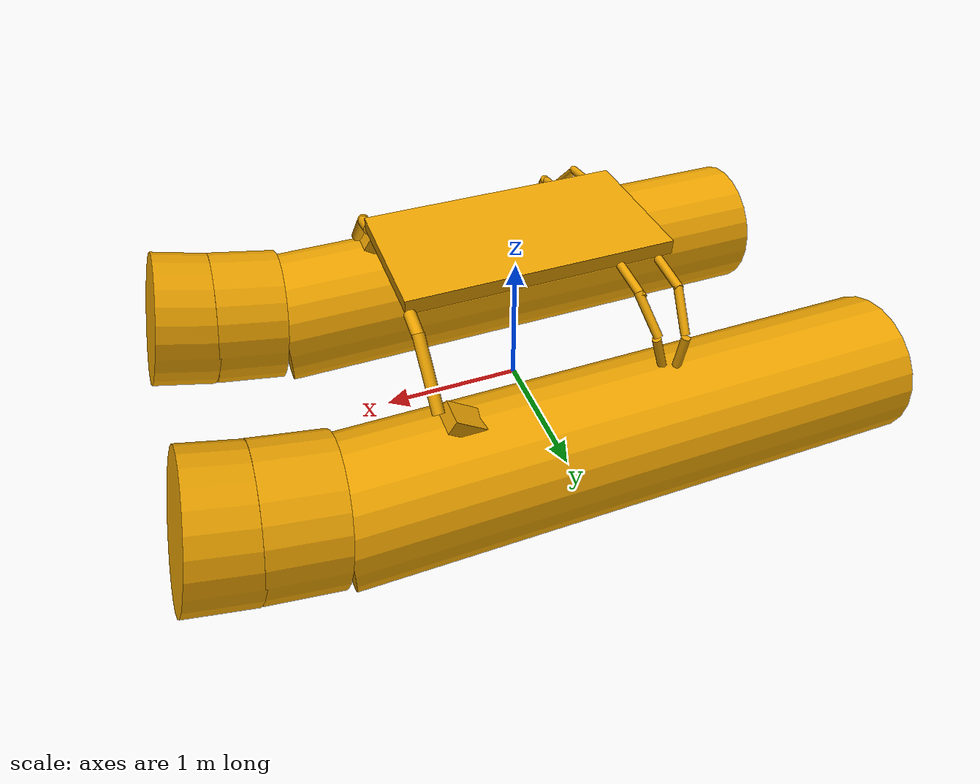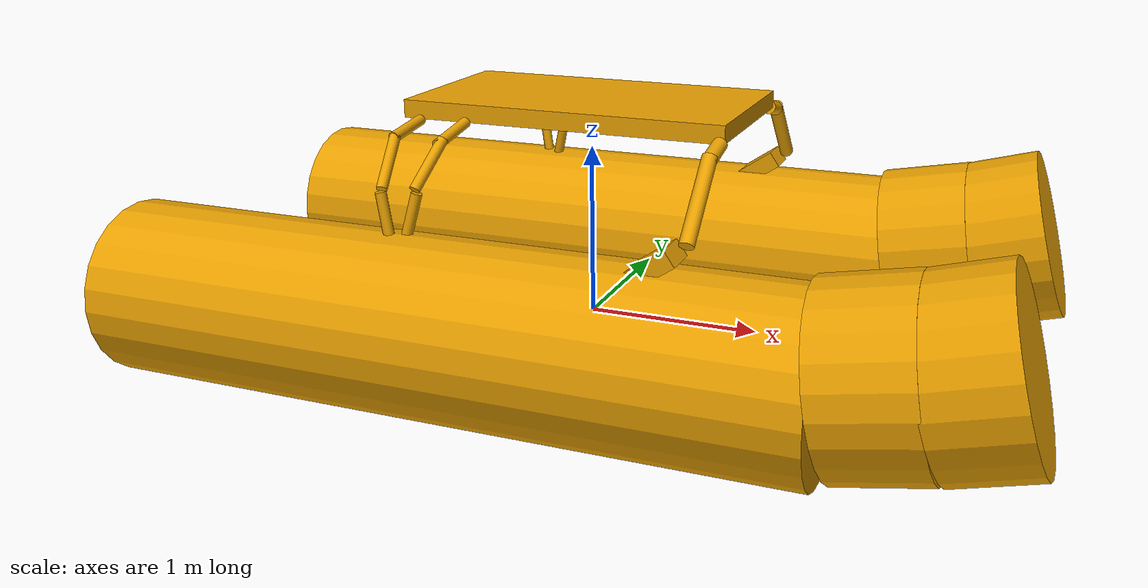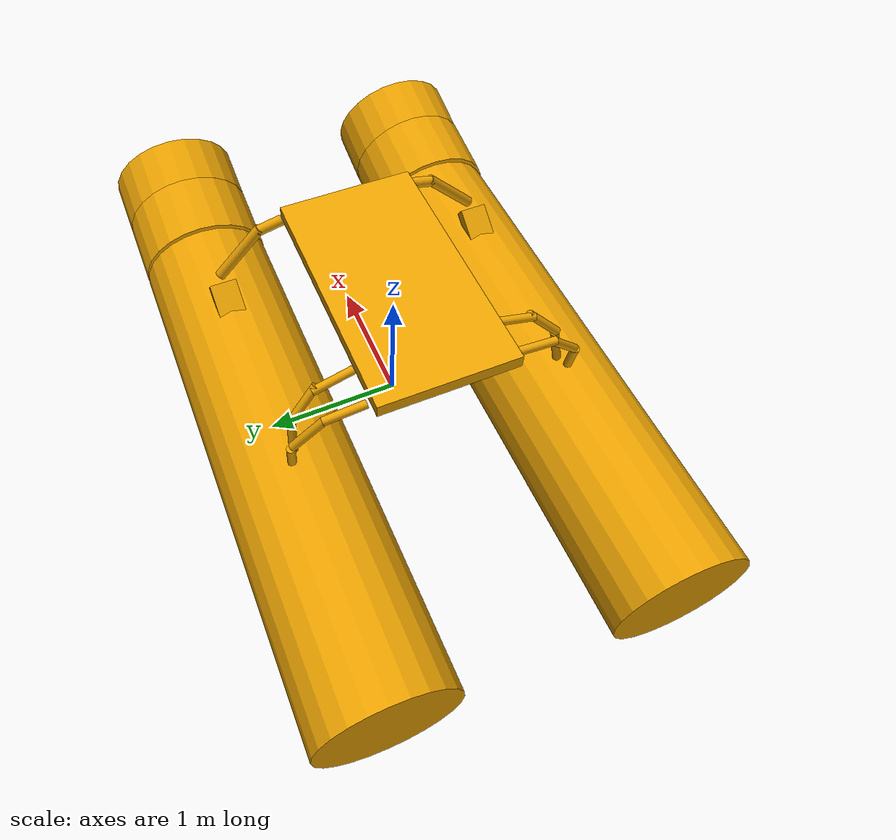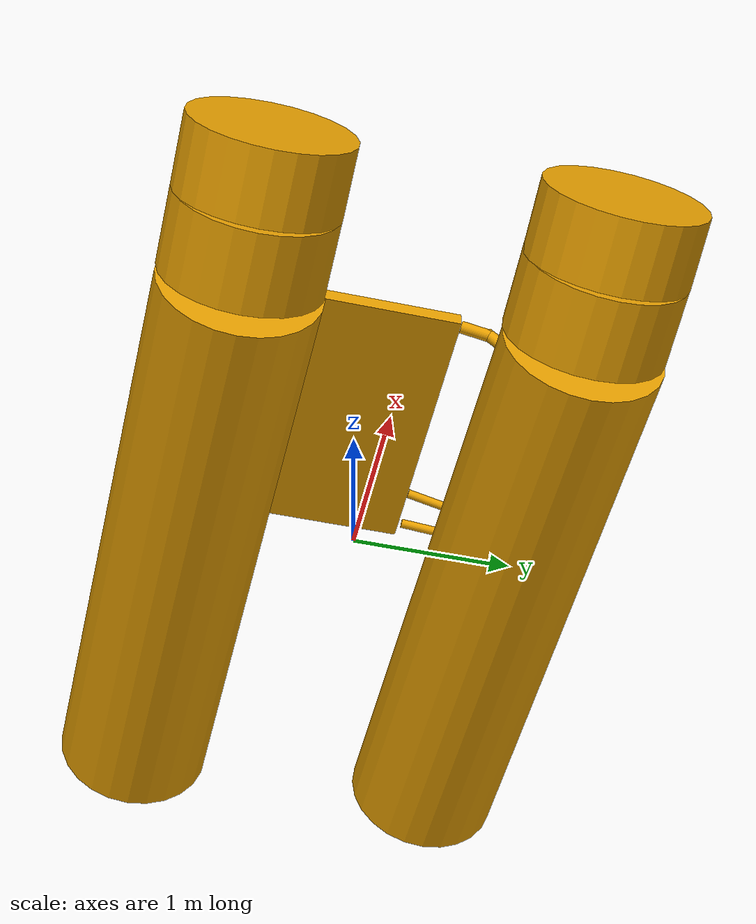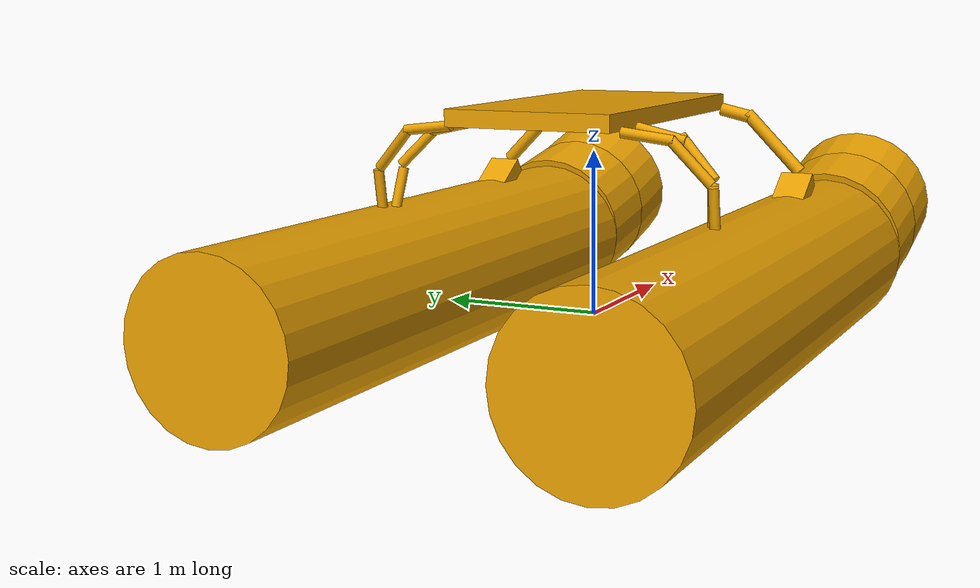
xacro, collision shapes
<?xml version="1.0"?>
<robot xmlns:xacro="http://ros.org/wiki/xacro" name="wam-v">
  <!-- Required arg for melodic and kinetic... -->
  <xacro:arg name="namespace" default="wamv"/>
  <!-- Disable PBR texture references by default to avoid runtime model:// texture resolution errors; can be enabled by passing use_textures:=true -->
  <xacro:arg name="use_textures" default="false"/>
  <!-- Allow overriding mass and inertia from top-level xacro args -->
  <xacro:arg name="mass" default="1900.0"/>
  <xacro:arg name="ixx" default="1200"/>
  <xacro:arg name="iyy" default="4000"/>
  <xacro:arg name="izz" default="4500"/>
  <xacro:property name="namespace" value="$(arg namespace)" scope="global" />
  <!-- Macro for creating the main collisions as simple shapes. -->
  <xacro:macro name="main_collisions" params="prefix reflect:=1">
    <!-- Main float -->
    <collision name="${prefix}_float">
      <origin xyz="-0.4 ${1.03*reflect} 0.2" rpy="${0*reflect} 1.57 0" />
      <geometry>
        <cylinder length="4" radius="0.5" />
      </geometry>
    </collision>

    <collision name="${prefix}_mid_float">
      <origin xyz="1.85 ${1.03*reflect} 0.3" rpy="${0*reflect} 1.38 0" />
      <geometry>
        <cylinder length="0.5" radius="0.5" />
      </geometry>
    </collision>
    <collision name="${prefix}_front_float">
      <origin xyz="2.3 ${1.03*reflect} 0.4" rpy="${0*reflect} 1.3 0" />
      <geometry>
        <cylinder length="0.45" radius="0.5" />
      </geometry>
    </collision>

    <!-- Front beam -->
    <collision name="front_${prefix}_beam_lower">
      <origin xyz="0.9 ${0.85*reflect} 1" rpy="${0.78*reflect} 0 0" />
      <geometry>
        <cylinder length="0.5" radius="0.04" />
      </geometry>
    </collision>

    <collision name="front_${prefix}_beam_upper">
      <origin xyz="0.9 ${0.6*reflect} 1.18" rpy="${1.35*reflect} 0 0" />
      <geometry>
        <cylinder length="0.2" radius="0.04" />
      </geometry>
    </collision>

    <!-- Mid beam -->
    <collision name="mid_${prefix}_beam_lower">
      <origin xyz="-0.65 ${0.99*reflect} 0.7" rpy="${0.1*reflect} 0.25 0" />
      <geometry>
        <cylinder length="0.45" radius="0.03" />
      </geometry>
    </collision>

    <collision name="mid_${prefix}_beam_medium">
      <origin xyz="-0.57 ${0.87*reflect} 1.05" rpy="${0.75*reflect} 0.25 0" />
      <geometry>
        <cylinder length="0.32" radius="0.03" />
      </geometry>
    </collision>

    <collision name="mid_${prefix}_beam_upper">
      <origin xyz="-0.55 ${0.65*reflect} 1.17" rpy="${1.35*reflect} 0.25 0" />
      <geometry>
        <cylinder length="0.3" radius="0.03" />
      </geometry>
    </collision>

    <!-- Rear beam -->
    <collision name="rear_${prefix}_beam_lower">
      <origin xyz="-0.74 ${1.03*reflect} 0.7" rpy="${0*reflect} -0.15 0" />
      <geometry>
        <cylinder length="0.45" radius="0.03" />
      </geometry>
    </collision>

    <collision name="rear_${prefix}_beam_medium">
      <origin xyz="-0.79 ${0.91*reflect} 1.05" rpy="${0.75*reflect} -0.15 0" />
      <geometry>
        <cylinder length="0.32" radius="0.03" />
      </geometry>
    </collision>

    <collision name="rear_${prefix}_beam_upper">
      <origin xyz="-0.81 ${0.67*reflect} 1.18" rpy="${1.45*reflect} -0.15 0" />
      <geometry>
        <cylinder length="0.3" radius="0.03" />
      </geometry>
    </collision>

    <!-- Joint -->
    <collision name="${prefix}_joint">
      <origin xyz="0.58 ${1.03*reflect} 0.6" rpy="${0*reflect} -0.6 0" />
      <geometry>
        <box size="0.65 0.2 0.1" />
      </geometry>
    </collision>
  </xacro:macro>

  <!-- Basic model of the 16' WAM-V USV -->
  <link name="${namespace}/base_link">
    <visual>
      <geometry>
        <mesh filename="package://wamv_description/models/WAM-V-Base/mesh/M5_body.dae"/>
      </geometry>
    </visual>
<!-- src/my_wamv/blade_R.dae -->
    <!-- Left base collisions -->
    <xacro:main_collisions prefix="left" reflect="1" />

    <!-- Right side collisions -->
    <xacro:main_collisions prefix="right" reflect="-1" />

     <!-- Top base -->
    <collision name="top_base">
      <origin xyz="0 -0 1.25" rpy="0 0 0" />
      <geometry>
        <box size="1.85 1 0.1" />
      </geometry>
    </collision>

    <inertial>
      <!-- Mass and inertia read from args (with defaults defined at the top) -->
      <mass value="$(arg mass)"/>
      <origin xyz="0 0 -0.2" rpy="0 0 0"/>
      <!-- Inertia tensor (diagonal) -->
      <inertia ixx="$(arg ixx)" ixy="0" ixz="0" iyy="$(arg iyy)" iyz="0" izz="$(arg izz)"/>
    </inertial>
  </link>

  <gazebo>
    <enable_wind>true</enable_wind>
  </gazebo>

  <gazebo reference="${namespace}/base_link">
    <visual>
      <material>
        <diffuse>1.0 1.0 1.0</diffuse>
        <specular>1.0 1.0 1.0</specular>
        <xacro:if value="$(arg use_textures)">
          <pbr>
            <metal>
              <albedo_map>model://wamv_description/models/WAM-V-Base/mesh/WAM-V_Albedo.png</albedo_map>
              <normal_map>model://wamv_description/models/WAM-V-Base/mesh/WAM-V_Normal.png</normal_map>
              <roughness_map>model://wamv_description/models/WAM-V-Base/mesh/WAM-V_Roughness.png</roughness_map>
              <metalness_map>model://wamv_description/models/WAM-V-Base/mesh/WAM-V_Metalness.png</metalness_map>
            </metal>
          </pbr>
        </xacro:if>
      </material>
    </visual>

    <sensor type="contact" name="contact_sensor">
      <contact>
        <!-- collisions are renamed during urdf -> sdf fixed joint lumping -->
        <collision>${namespace}/base_link_fixed_joint_lump__top_base_collision_24</collision>
        <collision>${namespace}/base_link_fixed_joint_lump__left_float_collision</collision>
        <collision>${namespace}/base_link_fixed_joint_lump__left_mid_float_collision_1</collision>
        <collision>${namespace}/base_link_fixed_joint_lump__left_front_float_collision_2</collision>
        <collision>${namespace}/base_link_fixed_joint_lump__right_float_collision_12</collision>
        <collision>${namespace}/base_link_fixed_joint_lump__right_mid_float_collision_13</collision>
        <collision>${namespace}/base_link_fixed_joint_lump__right_front_float_collision_14</collision>
        <topic>/vrx/contacts</topic>
      </contact>
      <always_on>1</always_on>
      <update_rate>5</update_rate>
    </sensor>
  </gazebo>

</robot>
